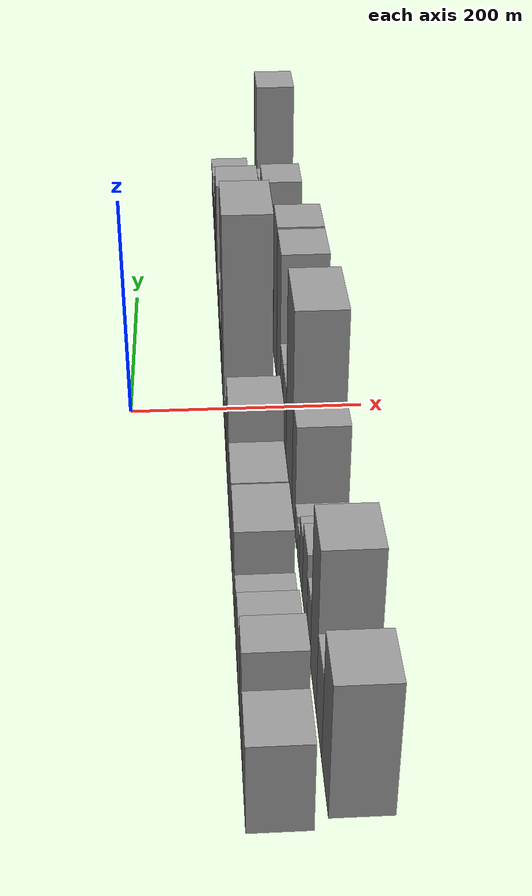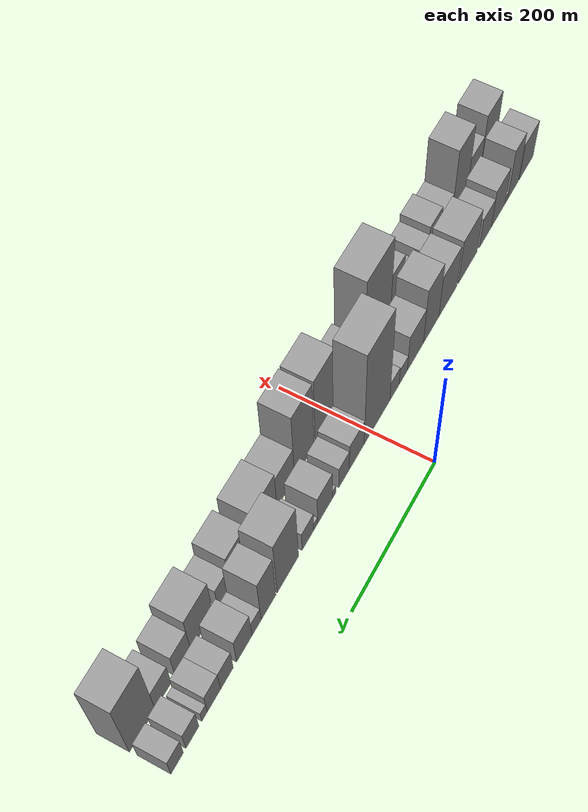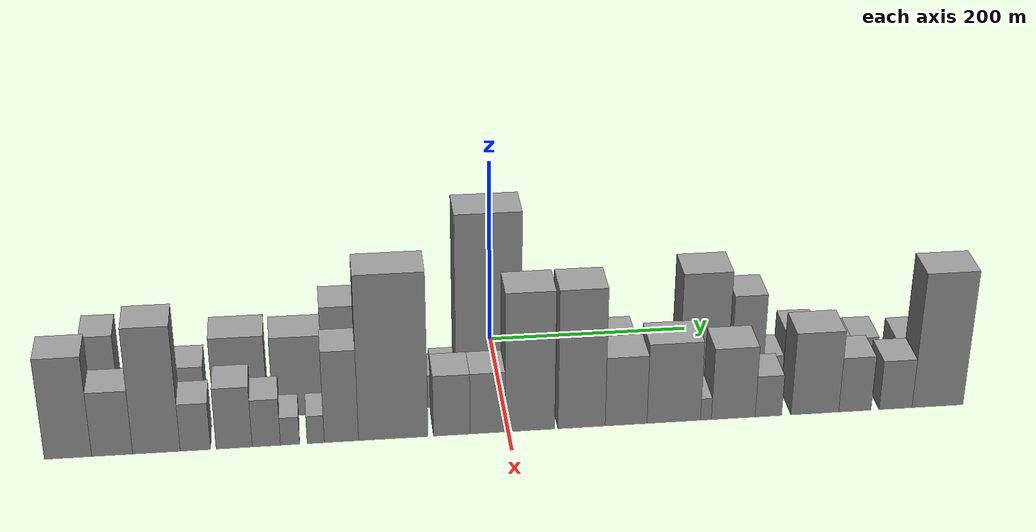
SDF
<sdf version="1.6">
 <world name="default">
  <scene>
   <sky><clouds><speed>12</speed></clouds></sky>
   <ambient>0.4 0.4 0.4 1</ambient>
   <background>0.7 0.7 0.7 1</background>
   <shadows>1</shadows>
  </scene>
  <gravity>0 0 -9.8066</gravity>
  <magnetic_field>6e-06 2.3e-05 -4.2e-05</magnetic_field>
  <physics default="0" name="default_physics" type="ode">
   <ode>
    <solver>
     <type>quick</type>
     <iters>10</iters>
     <sor>1.0</sor>
     <use_dynamic_moi_rescaling>0</use_dynamic_moi_rescaling>
    </solver>
    <constraints>
     <cfm>0</cfm>
     <erp>0.2</erp>
     <contact_max_correcting_vel>100</contact_max_correcting_vel>
     <contact_surface_layer>0.001</contact_surface_layer>
    </constraints>
   </ode>
   <max_step_size>0.004</max_step_size>
   <real_time_factor>1</real_time_factor>
   <real_time_update_rate>250</real_time_update_rate>
  </physics>
  <light name="sun" type="directional">
   <pose>0 0 10 0 0 0</pose>
   <diffuse>0.8 0.8 0.8 1</diffuse>
   <specular>0.2 0.2 0.2 1</specular>
   <attenuation>
    <range>1000</range>
    <constant>0.9</constant>
    <linear>0.01</linear>
    <quadratic>0.001</quadratic>
   </attenuation>
   <direction>-0.5 0.1 -0.9</direction>
  </light>
  <model name="building_1">
   <static>1</static>
   <pose>100.0000 -417.2567 0 0.000000 0.000000 0.000000</pose>
   <link name="link">
    <pose>0 0 36.00 0 0 0</pose>
    <collision name="collision"><geometry><box><size>40.0000 41.4867 72.0000</size></box></geometry></collision>
    <visual name="visual">
     <cast_shadows>0</cast_shadows>
     <geometry><box><size>40.0000 41.4867 72.0000</size></box></geometry>
     <material>
      <script>
       <uri>model://grey_wall/materials/scripts</uri>
       <uri>model://grey_wall/materials/textures</uri>
       <name>vrc/grey_wall</name>
      </script>
     </material>
    </visual>
   </link>
  </model>
  <model name="building_2">
   <static>1</static>
   <pose>100.0000 -378.1673 0 0.000000 0.000000 0.000000</pose>
   <link name="link">
    <pose>0 0 49.50 0 0 0</pose>
    <collision name="collision"><geometry><box><size>40.0000 30.6922 99.0000</size></box></geometry></collision>
    <visual name="visual">
     <cast_shadows>0</cast_shadows>
     <geometry><box><size>40.0000 30.6922 99.0000</size></box></geometry>
     <material>
      <script>
       <uri>model://grey_wall/materials/scripts</uri>
       <uri>model://grey_wall/materials/textures</uri>
       <name>vrc/grey_wall</name>
      </script>
     </material>
    </visual>
   </link>
  </model>
  <model name="building_3">
   <static>1</static>
   <pose>100.0000 -358.6175 0 0.000000 0.000000 0.000000</pose>
   <link name="link">
    <pose>0 0 9.00 0 0 0</pose>
    <collision name="collision"><geometry><box><size>40.0000 8.4073 18.0000</size></box></geometry></collision>
    <visual name="visual">
     <cast_shadows>0</cast_shadows>
     <geometry><box><size>40.0000 8.4073 18.0000</size></box></geometry>
     <material>
      <script>
       <uri>model://grey_wall/materials/scripts</uri>
       <uri>model://grey_wall/materials/textures</uri>
       <name>vrc/grey_wall</name>
      </script>
     </material>
    </visual>
   </link>
  </model>
  <model name="building_4">
   <static>1</static>
   <pose>100.0000 -335.2456 0 0.000000 0.000000 0.000000</pose>
   <link name="link">
    <pose>0 0 37.50 0 0 0</pose>
    <collision name="collision"><geometry><box><size>40.0000 38.3366 75.0000</size></box></geometry></collision>
    <visual name="visual">
     <cast_shadows>0</cast_shadows>
     <geometry><box><size>40.0000 38.3366 75.0000</size></box></geometry>
     <material>
      <script>
       <uri>model://grey_wall/materials/scripts</uri>
       <uri>model://grey_wall/materials/textures</uri>
       <name>vrc/grey_wall</name>
      </script>
     </material>
    </visual>
   </link>
  </model>
  <model name="building_5">
   <static>1</static>
   <pose>100.0000 -299.4173 0 0.000000 0.000000 0.000000</pose>
   <link name="link">
    <pose>0 0 30.00 0 0 0</pose>
    <collision name="collision"><geometry><box><size>40.0000 33.3198 60.0000</size></box></geometry></collision>
    <visual name="visual">
     <cast_shadows>0</cast_shadows>
     <geometry><box><size>40.0000 33.3198 60.0000</size></box></geometry>
     <material>
      <script>
       <uri>model://grey_wall/materials/scripts</uri>
       <uri>model://grey_wall/materials/textures</uri>
       <name>vrc/grey_wall</name>
      </script>
     </material>
    </visual>
   </link>
  </model>
  <model name="building_6">
   <static>1</static>
   <pose>100.0000 -250.2719 0 0.000000 0.000000 0.000000</pose>
   <link name="link">
    <pose>0 0 45.00 0 0 0</pose>
    <collision name="collision"><geometry><box><size>40.0000 50.9710 90.0000</size></box></geometry></collision>
    <visual name="visual">
     <cast_shadows>0</cast_shadows>
     <geometry><box><size>40.0000 50.9710 90.0000</size></box></geometry>
     <material>
      <script>
       <uri>model://grey_wall/materials/scripts</uri>
       <uri>model://grey_wall/materials/textures</uri>
       <name>vrc/grey_wall</name>
      </script>
     </material>
    </visual>
   </link>
  </model>
  <model name="building_7">
   <static>1</static>
   <pose>100.0000 -195.7346 0 0.000000 0.000000 0.000000</pose>
   <link name="link">
    <pose>0 0 43.50 0 0 0</pose>
    <collision name="collision"><geometry><box><size>40.0000 48.1036 87.0000</size></box></geometry></collision>
    <visual name="visual">
     <cast_shadows>0</cast_shadows>
     <geometry><box><size>40.0000 48.1036 87.0000</size></box></geometry>
     <material>
      <script>
       <uri>model://grey_wall/materials/scripts</uri>
       <uri>model://grey_wall/materials/textures</uri>
       <name>vrc/grey_wall</name>
      </script>
     </material>
    </visual>
   </link>
  </model>
  <model name="building_8">
   <static>1</static>
   <pose>100.0000 -151.3769 0 0.000000 0.000000 0.000000</pose>
   <link name="link">
    <pose>0 0 58.50 0 0 0</pose>
    <collision name="collision"><geometry><box><size>40.0000 40.6118 117.0000</size></box></geometry></collision>
    <visual name="visual">
     <cast_shadows>0</cast_shadows>
     <geometry><box><size>40.0000 40.6118 117.0000</size></box></geometry>
     <material>
      <script>
       <uri>model://grey_wall/materials/scripts</uri>
       <uri>model://grey_wall/materials/textures</uri>
       <name>vrc/grey_wall</name>
      </script>
     </material>
    </visual>
   </link>
  </model>
  <model name="building_9">
   <static>1</static>
   <pose>100.0000 -110.2192 0 0.000000 0.000000 0.000000</pose>
   <link name="link">
    <pose>0 0 39.00 0 0 0</pose>
    <collision name="collision"><geometry><box><size>40.0000 41.7035 78.0000</size></box></geometry></collision>
    <visual name="visual">
     <cast_shadows>0</cast_shadows>
     <geometry><box><size>40.0000 41.7035 78.0000</size></box></geometry>
     <material>
      <script>
       <uri>model://grey_wall/materials/scripts</uri>
       <uri>model://grey_wall/materials/textures</uri>
       <name>vrc/grey_wall</name>
      </script>
     </material>
    </visual>
   </link>
  </model>
  <model name="building_10">
   <static>1</static>
   <pose>100.0000 -78.9735 0 0.000000 0.000000 0.000000</pose>
   <link name="link">
    <pose>0 0 18.00 0 0 0</pose>
    <collision name="collision"><geometry><box><size>40.0000 20.7880 36.0000</size></box></geometry></collision>
    <visual name="visual">
     <cast_shadows>0</cast_shadows>
     <geometry><box><size>40.0000 20.7880 36.0000</size></box></geometry>
     <material>
      <script>
       <uri>model://grey_wall/materials/scripts</uri>
       <uri>model://grey_wall/materials/textures</uri>
       <name>vrc/grey_wall</name>
      </script>
     </material>
    </visual>
   </link>
  </model>
  <model name="building_11">
   <static>1</static>
   <pose>100.0000 -56.8139 0 0.000000 0.000000 0.000000</pose>
   <link name="link">
    <pose>0 0 21.00 0 0 0</pose>
    <collision name="collision"><geometry><box><size>40.0000 23.5311 42.0000</size></box></geometry></collision>
    <visual name="visual">
     <cast_shadows>0</cast_shadows>
     <geometry><box><size>40.0000 23.5311 42.0000</size></box></geometry>
     <material>
      <script>
       <uri>model://grey_wall/materials/scripts</uri>
       <uri>model://grey_wall/materials/textures</uri>
       <name>vrc/grey_wall</name>
      </script>
     </material>
    </visual>
   </link>
  </model>
  <model name="building_12">
   <static>1</static>
   <pose>100.0000 -13.4844 0 0.000000 0.000000 0.000000</pose>
   <link name="link">
    <pose>0 0 103.50 0 0 0</pose>
    <collision name="collision"><geometry><box><size>40.0000 63.1280 207.0000</size></box></geometry></collision>
    <visual name="visual">
     <cast_shadows>0</cast_shadows>
     <geometry><box><size>40.0000 63.1280 207.0000</size></box></geometry>
     <material>
      <script>
       <uri>model://grey_wall/materials/scripts</uri>
       <uri>model://grey_wall/materials/textures</uri>
       <name>vrc/grey_wall</name>
      </script>
     </material>
    </visual>
   </link>
  </model>
  <model name="building_13">
   <static>1</static>
   <pose>100.0000 35.9638 0 0.000000 0.000000 0.000000</pose>
   <link name="link">
    <pose>0 0 30.00 0 0 0</pose>
    <collision name="collision"><geometry><box><size>40.0000 35.7683 60.0000</size></box></geometry></collision>
    <visual name="visual">
     <cast_shadows>0</cast_shadows>
     <geometry><box><size>40.0000 35.7683 60.0000</size></box></geometry>
     <material>
      <script>
       <uri>model://grey_wall/materials/scripts</uri>
       <uri>model://grey_wall/materials/textures</uri>
       <name>vrc/grey_wall</name>
      </script>
     </material>
    </visual>
   </link>
  </model>
  <model name="building_14">
   <static>1</static>
   <pose>100.0000 66.1220 0 0.000000 0.000000 0.000000</pose>
   <link name="link">
    <pose>0 0 24.00 0 0 0</pose>
    <collision name="collision"><geometry><box><size>40.0000 24.5481 48.0000</size></box></geometry></collision>
    <visual name="visual">
     <cast_shadows>0</cast_shadows>
     <geometry><box><size>40.0000 24.5481 48.0000</size></box></geometry>
     <material>
      <script>
       <uri>model://grey_wall/materials/scripts</uri>
       <uri>model://grey_wall/materials/textures</uri>
       <name>vrc/grey_wall</name>
      </script>
     </material>
    </visual>
   </link>
  </model>
  <model name="building_15">
   <static>1</static>
   <pose>100.0000 89.5140 0 0.000000 0.000000 0.000000</pose>
   <link name="link">
    <pose>0 0 9.00 0 0 0</pose>
    <collision name="collision"><geometry><box><size>40.0000 8.2359 18.0000</size></box></geometry></collision>
    <visual name="visual">
     <cast_shadows>0</cast_shadows>
     <geometry><box><size>40.0000 8.2359 18.0000</size></box></geometry>
     <material>
      <script>
       <uri>model://grey_wall/materials/scripts</uri>
       <uri>model://grey_wall/materials/textures</uri>
       <name>vrc/grey_wall</name>
      </script>
     </material>
    </visual>
   </link>
  </model>
  <model name="building_16">
   <static>1</static>
   <pose>100.0000 110.7530 0 0.000000 0.000000 0.000000</pose>
   <link name="link">
    <pose>0 0 33.00 0 0 0</pose>
    <collision name="collision"><geometry><box><size>40.0000 34.2422 66.0000</size></box></geometry></collision>
    <visual name="visual">
     <cast_shadows>0</cast_shadows>
     <geometry><box><size>40.0000 34.2422 66.0000</size></box></geometry>
     <material>
      <script>
       <uri>model://grey_wall/materials/scripts</uri>
       <uri>model://grey_wall/materials/textures</uri>
       <name>vrc/grey_wall</name>
      </script>
     </material>
    </visual>
   </link>
  </model>
  <model name="building_17">
   <static>1</static>
   <pose>100.0000 132.3384 0 0.000000 0.000000 0.000000</pose>
   <link name="link">
    <pose>0 0 9.00 0 0 0</pose>
    <collision name="collision"><geometry><box><size>40.0000 8.9285 18.0000</size></box></geometry></collision>
    <visual name="visual">
     <cast_shadows>0</cast_shadows>
     <geometry><box><size>40.0000 8.9285 18.0000</size></box></geometry>
     <material>
      <script>
       <uri>model://grey_wall/materials/scripts</uri>
       <uri>model://grey_wall/materials/textures</uri>
       <name>vrc/grey_wall</name>
      </script>
     </material>
    </visual>
   </link>
  </model>
  <model name="building_18">
   <static>1</static>
   <pose>100.0000 150.1036 0 0.000000 0.000000 0.000000</pose>
   <link name="link">
    <pose>0 0 22.50 0 0 0</pose>
    <collision name="collision"><geometry><box><size>40.0000 26.6019 45.0000</size></box></geometry></collision>
    <visual name="visual">
     <cast_shadows>0</cast_shadows>
     <geometry><box><size>40.0000 26.6019 45.0000</size></box></geometry>
     <material>
      <script>
       <uri>model://grey_wall/materials/scripts</uri>
       <uri>model://grey_wall/materials/textures</uri>
       <name>vrc/grey_wall</name>
      </script>
     </material>
    </visual>
   </link>
  </model>
  <model name="building_19">
   <static>1</static>
   <pose>100.0000 195.0816 0 0.000000 0.000000 0.000000</pose>
   <link name="link">
    <pose>0 0 66.00 0 0 0</pose>
    <collision name="collision"><geometry><box><size>40.0000 47.3541 132.0000</size></box></geometry></collision>
    <visual name="visual">
     <cast_shadows>0</cast_shadows>
     <geometry><box><size>40.0000 47.3541 132.0000</size></box></geometry>
     <material>
      <script>
       <uri>model://grey_wall/materials/scripts</uri>
       <uri>model://grey_wall/materials/textures</uri>
       <name>vrc/grey_wall</name>
      </script>
     </material>
    </visual>
   </link>
  </model>
  <model name="building_20">
   <static>1</static>
   <pose>100.0000 237.6945 0 0.000000 0.000000 0.000000</pose>
   <link name="link">
    <pose>0 0 52.50 0 0 0</pose>
    <collision name="collision"><geometry><box><size>40.0000 31.8718 105.0000</size></box></geometry></collision>
    <visual name="visual">
     <cast_shadows>0</cast_shadows>
     <geometry><box><size>40.0000 31.8718 105.0000</size></box></geometry>
     <material>
      <script>
       <uri>model://grey_wall/materials/scripts</uri>
       <uri>model://grey_wall/materials/textures</uri>
       <name>vrc/grey_wall</name>
      </script>
     </material>
    </visual>
   </link>
  </model>
  <model name="building_21">
   <static>1</static>
   <pose>100.0000 263.5030 0 0.000000 0.000000 0.000000</pose>
   <link name="link">
    <pose>0 0 18.00 0 0 0</pose>
    <collision name="collision"><geometry><box><size>40.0000 19.7451 36.0000</size></box></geometry></collision>
    <visual name="visual">
     <cast_shadows>0</cast_shadows>
     <geometry><box><size>40.0000 19.7451 36.0000</size></box></geometry>
     <material>
      <script>
       <uri>model://grey_wall/materials/scripts</uri>
       <uri>model://grey_wall/materials/textures</uri>
       <name>vrc/grey_wall</name>
      </script>
     </material>
    </visual>
   </link>
  </model>
  <model name="building_22">
   <static>1</static>
   <pose>100.0000 289.6496 0 0.000000 0.000000 0.000000</pose>
   <link name="link">
    <pose>0 0 31.50 0 0 0</pose>
    <collision name="collision"><geometry><box><size>40.0000 32.5481 63.0000</size></box></geometry></collision>
    <visual name="visual">
     <cast_shadows>0</cast_shadows>
     <geometry><box><size>40.0000 32.5481 63.0000</size></box></geometry>
     <material>
      <script>
       <uri>model://grey_wall/materials/scripts</uri>
       <uri>model://grey_wall/materials/textures</uri>
       <name>vrc/grey_wall</name>
      </script>
     </material>
    </visual>
   </link>
  </model>
  <model name="building_23">
   <static>1</static>
   <pose>100.0000 326.0409 0 0.000000 0.000000 0.000000</pose>
   <link name="link">
    <pose>0 0 25.50 0 0 0</pose>
    <collision name="collision"><geometry><box><size>40.0000 26.2345 51.0000</size></box></geometry></collision>
    <visual name="visual">
     <cast_shadows>0</cast_shadows>
     <geometry><box><size>40.0000 26.2345 51.0000</size></box></geometry>
     <material>
      <script>
       <uri>model://grey_wall/materials/scripts</uri>
       <uri>model://grey_wall/materials/textures</uri>
       <name>vrc/grey_wall</name>
      </script>
     </material>
    </visual>
   </link>
  </model>
  <model name="building_24">
   <static>1</static>
   <pose>100.0000 352.7121 0 0.000000 0.000000 0.000000</pose>
   <link name="link">
    <pose>0 0 25.50 0 0 0</pose>
    <collision name="collision"><geometry><box><size>40.0000 27.1079 51.0000</size></box></geometry></collision>
    <visual name="visual">
     <cast_shadows>0</cast_shadows>
     <geometry><box><size>40.0000 27.1079 51.0000</size></box></geometry>
     <material>
      <script>
       <uri>model://grey_wall/materials/scripts</uri>
       <uri>model://grey_wall/materials/textures</uri>
       <name>vrc/grey_wall</name>
      </script>
     </material>
    </visual>
   </link>
  </model>
  <model name="building_25">
   <static>1</static>
   <pose>100.0000 371.8195 0 0.000000 0.000000 0.000000</pose>
   <link name="link">
    <pose>0 0 13.50 0 0 0</pose>
    <collision name="collision"><geometry><box><size>40.0000 11.1069 27.0000</size></box></geometry></collision>
    <visual name="visual">
     <cast_shadows>0</cast_shadows>
     <geometry><box><size>40.0000 11.1069 27.0000</size></box></geometry>
     <material>
      <script>
       <uri>model://grey_wall/materials/scripts</uri>
       <uri>model://grey_wall/materials/textures</uri>
       <name>vrc/grey_wall</name>
      </script>
     </material>
    </visual>
   </link>
  </model>
  <model name="building_26">
   <static>1</static>
   <pose>100.0000 396.3256 0 0.000000 0.000000 0.000000</pose>
   <link name="link">
    <pose>0 0 24.00 0 0 0</pose>
    <collision name="collision"><geometry><box><size>40.0000 25.9053 48.0000</size></box></geometry></collision>
    <visual name="visual">
     <cast_shadows>0</cast_shadows>
     <geometry><box><size>40.0000 25.9053 48.0000</size></box></geometry>
     <material>
      <script>
       <uri>model://grey_wall/materials/scripts</uri>
       <uri>model://grey_wall/materials/textures</uri>
       <name>vrc/grey_wall</name>
      </script>
     </material>
    </visual>
   </link>
  </model>
  <model name="building_27">
   <static>1</static>
   <pose>100.0000 426.5920 0 0.000000 0.000000 0.000000</pose>
   <link name="link">
    <pose>0 0 22.50 0 0 0</pose>
    <collision name="collision"><geometry><box><size>40.0000 24.6274 45.0000</size></box></geometry></collision>
    <visual name="visual">
     <cast_shadows>0</cast_shadows>
     <geometry><box><size>40.0000 24.6274 45.0000</size></box></geometry>
     <material>
      <script>
       <uri>model://grey_wall/materials/scripts</uri>
       <uri>model://grey_wall/materials/textures</uri>
       <name>vrc/grey_wall</name>
      </script>
     </material>
    </visual>
   </link>
  </model>
  <model name="building_28">
   <static>1</static>
   <pose>149.0000 -408.5262 0 0.000000 0.000000 0.000000</pose>
   <link name="link">
    <pose>0 0 54.00 0 0 0</pose>
    <collision name="collision"><geometry><box><size>40.0000 42.9476 108.0000</size></box></geometry></collision>
    <visual name="visual">
     <cast_shadows>0</cast_shadows>
     <geometry><box><size>40.0000 42.9476 108.0000</size></box></geometry>
     <material>
      <script>
       <uri>model://grey_wall/materials/scripts</uri>
       <uri>model://grey_wall/materials/textures</uri>
       <name>vrc/grey_wall</name>
      </script>
     </material>
    </visual>
   </link>
  </model>
  <model name="building_29">
   <static>1</static>
   <pose>149.0000 -368.2829 0 0.000000 0.000000 0.000000</pose>
   <link name="link">
    <pose>0 0 34.50 0 0 0</pose>
    <collision name="collision"><geometry><box><size>40.0000 37.5390 69.0000</size></box></geometry></collision>
    <visual name="visual">
     <cast_shadows>0</cast_shadows>
     <geometry><box><size>40.0000 37.5390 69.0000</size></box></geometry>
     <material>
      <script>
       <uri>model://grey_wall/materials/scripts</uri>
       <uri>model://grey_wall/materials/textures</uri>
       <name>vrc/grey_wall</name>
      </script>
     </material>
    </visual>
   </link>
  </model>
  <model name="building_30">
   <static>1</static>
   <pose>149.0000 -327.7249 0 0.000000 0.000000 0.000000</pose>
   <link name="link">
    <pose>0 0 67.50 0 0 0</pose>
    <collision name="collision"><geometry><box><size>40.0000 43.5769 135.0000</size></box></geometry></collision>
    <visual name="visual">
     <cast_shadows>0</cast_shadows>
     <geometry><box><size>40.0000 43.5769 135.0000</size></box></geometry>
     <material>
      <script>
       <uri>model://grey_wall/materials/scripts</uri>
       <uri>model://grey_wall/materials/textures</uri>
       <name>vrc/grey_wall</name>
      </script>
     </material>
    </visual>
   </link>
  </model>
  <model name="building_31">
   <static>1</static>
   <pose>149.0000 -291.9548 0 0.000000 0.000000 0.000000</pose>
   <link name="link">
    <pose>0 0 25.50 0 0 0</pose>
    <collision name="collision"><geometry><box><size>40.0000 27.9634 51.0000</size></box></geometry></collision>
    <visual name="visual">
     <cast_shadows>0</cast_shadows>
     <geometry><box><size>40.0000 27.9634 51.0000</size></box></geometry>
     <material>
      <script>
       <uri>model://grey_wall/materials/scripts</uri>
       <uri>model://grey_wall/materials/textures</uri>
       <name>vrc/grey_wall</name>
      </script>
     </material>
    </visual>
   </link>
  </model>
  <model name="building_32">
   <static>1</static>
   <pose>149.0000 -256.3212 0 0.000000 0.000000 0.000000</pose>
   <link name="link">
    <pose>0 0 33.00 0 0 0</pose>
    <collision name="collision"><geometry><box><size>40.0000 33.3038 66.0000</size></box></geometry></collision>
    <visual name="visual">
     <cast_shadows>0</cast_shadows>
     <geometry><box><size>40.0000 33.3038 66.0000</size></box></geometry>
     <material>
      <script>
       <uri>model://grey_wall/materials/scripts</uri>
       <uri>model://grey_wall/materials/textures</uri>
       <name>vrc/grey_wall</name>
      </script>
     </material>
    </visual>
   </link>
  </model>
  <model name="building_33">
   <static>1</static>
   <pose>149.0000 -226.5841 0 0.000000 0.000000 0.000000</pose>
   <link name="link">
    <pose>0 0 25.50 0 0 0</pose>
    <collision name="collision"><geometry><box><size>40.0000 26.1703 51.0000</size></box></geometry></collision>
    <visual name="visual">
     <cast_shadows>0</cast_shadows>
     <geometry><box><size>40.0000 26.1703 51.0000</size></box></geometry>
     <material>
      <script>
       <uri>model://grey_wall/materials/scripts</uri>
       <uri>model://grey_wall/materials/textures</uri>
       <name>vrc/grey_wall</name>
      </script>
     </material>
    </visual>
   </link>
  </model>
  <model name="building_34">
   <static>1</static>
   <pose>149.0000 -204.5828 0 0.000000 0.000000 0.000000</pose>
   <link name="link">
    <pose>0 0 15.00 0 0 0</pose>
    <collision name="collision"><geometry><box><size>40.0000 17.8323 30.0000</size></box></geometry></collision>
    <visual name="visual">
     <cast_shadows>0</cast_shadows>
     <geometry><box><size>40.0000 17.8323 30.0000</size></box></geometry>
     <material>
      <script>
       <uri>model://grey_wall/materials/scripts</uri>
       <uri>model://grey_wall/materials/textures</uri>
       <name>vrc/grey_wall</name>
      </script>
     </material>
    </visual>
   </link>
  </model>
  <model name="building_35">
   <static>1</static>
   <pose>149.0000 -180.7078 0 0.000000 0.000000 0.000000</pose>
   <link name="link">
    <pose>0 0 15.00 0 0 0</pose>
    <collision name="collision"><geometry><box><size>40.0000 15.9178 30.0000</size></box></geometry></collision>
    <visual name="visual">
     <cast_shadows>0</cast_shadows>
     <geometry><box><size>40.0000 15.9178 30.0000</size></box></geometry>
     <material>
      <script>
       <uri>model://grey_wall/materials/scripts</uri>
       <uri>model://grey_wall/materials/textures</uri>
       <name>vrc/grey_wall</name>
      </script>
     </material>
    </visual>
   </link>
  </model>
  <model name="building_36">
   <static>1</static>
   <pose>149.0000 -156.7536 0 0.000000 0.000000 0.000000</pose>
   <link name="link">
    <pose>0 0 49.50 0 0 0</pose>
    <collision name="collision"><geometry><box><size>40.0000 31.9906 99.0000</size></box></geometry></collision>
    <visual name="visual">
     <cast_shadows>0</cast_shadows>
     <geometry><box><size>40.0000 31.9906 99.0000</size></box></geometry>
     <material>
      <script>
       <uri>model://grey_wall/materials/scripts</uri>
       <uri>model://grey_wall/materials/textures</uri>
       <name>vrc/grey_wall</name>
      </script>
     </material>
    </visual>
   </link>
  </model>
  <model name="building_37">
   <static>1</static>
   <pose>149.0000 -108.1643 0 0.000000 0.000000 0.000000</pose>
   <link name="link">
    <pose>0 0 88.50 0 0 0</pose>
    <collision name="collision"><geometry><box><size>40.0000 65.1881 177.0000</size></box></geometry></collision>
    <visual name="visual">
     <cast_shadows>0</cast_shadows>
     <geometry><box><size>40.0000 65.1881 177.0000</size></box></geometry>
     <material>
      <script>
       <uri>model://grey_wall/materials/scripts</uri>
       <uri>model://grey_wall/materials/textures</uri>
       <name>vrc/grey_wall</name>
      </script>
     </material>
    </visual>
   </link>
  </model>
  <model name="building_38">
   <static>1</static>
   <pose>149.0000 -53.2823 0 0.000000 0.000000 0.000000</pose>
   <link name="link">
    <pose>0 0 33.00 0 0 0</pose>
    <collision name="collision"><geometry><box><size>40.0000 34.5761 66.0000</size></box></geometry></collision>
    <visual name="visual">
     <cast_shadows>0</cast_shadows>
     <geometry><box><size>40.0000 34.5761 66.0000</size></box></geometry>
     <material>
      <script>
       <uri>model://grey_wall/materials/scripts</uri>
       <uri>model://grey_wall/materials/textures</uri>
       <name>vrc/grey_wall</name>
      </script>
     </material>
    </visual>
   </link>
  </model>
  <model name="building_39">
   <static>1</static>
   <pose>149.0000 -19.4024 0 0.000000 0.000000 0.000000</pose>
   <link name="link">
    <pose>0 0 33.00 0 0 0</pose>
    <collision name="collision"><geometry><box><size>40.0000 33.1837 66.0000</size></box></geometry></collision>
    <visual name="visual">
     <cast_shadows>0</cast_shadows>
     <geometry><box><size>40.0000 33.1837 66.0000</size></box></geometry>
     <material>
      <script>
       <uri>model://grey_wall/materials/scripts</uri>
       <uri>model://grey_wall/materials/textures</uri>
       <name>vrc/grey_wall</name>
      </script>
     </material>
    </visual>
   </link>
  </model>
  <model name="building_40">
   <static>1</static>
   <pose>149.0000 20.6225 0 0.000000 0.000000 0.000000</pose>
   <link name="link">
    <pose>0 0 75.00 0 0 0</pose>
    <collision name="collision"><geometry><box><size>40.0000 46.8661 150.0000</size></box></geometry></collision>
    <visual name="visual">
     <cast_shadows>0</cast_shadows>
     <geometry><box><size>40.0000 46.8661 150.0000</size></box></geometry>
     <material>
      <script>
       <uri>model://grey_wall/materials/scripts</uri>
       <uri>model://grey_wall/materials/textures</uri>
       <name>vrc/grey_wall</name>
      </script>
     </material>
    </visual>
   </link>
  </model>
  <model name="building_41">
   <static>1</static>
   <pose>149.0000 69.5752 0 0.000000 0.000000 0.000000</pose>
   <link name="link">
    <pose>0 0 75.00 0 0 0</pose>
    <collision name="collision"><geometry><box><size>40.0000 45.0393 150.0000</size></box></geometry></collision>
    <visual name="visual">
     <cast_shadows>0</cast_shadows>
     <geometry><box><size>40.0000 45.0393 150.0000</size></box></geometry>
     <material>
      <script>
       <uri>model://grey_wall/materials/scripts</uri>
       <uri>model://grey_wall/materials/textures</uri>
       <name>vrc/grey_wall</name>
      </script>
     </material>
    </visual>
   </link>
  </model>
  <model name="building_42">
   <static>1</static>
   <pose>149.0000 112.1137 0 0.000000 0.000000 0.000000</pose>
   <link name="link">
    <pose>0 0 37.50 0 0 0</pose>
    <collision name="collision"><geometry><box><size>40.0000 40.0377 75.0000</size></box></geometry></collision>
    <visual name="visual">
     <cast_shadows>0</cast_shadows>
     <geometry><box><size>40.0000 40.0377 75.0000</size></box></geometry>
     <material>
      <script>
       <uri>model://grey_wall/materials/scripts</uri>
       <uri>model://grey_wall/materials/textures</uri>
       <name>vrc/grey_wall</name>
      </script>
     </material>
    </visual>
   </link>
  </model>
  <model name="building_43">
   <static>1</static>
   <pose>149.0000 157.8726 0 0.000000 0.000000 0.000000</pose>
   <link name="link">
    <pose>0 0 43.50 0 0 0</pose>
    <collision name="collision"><geometry><box><size>40.0000 51.4801 87.0000</size></box></geometry></collision>
    <visual name="visual">
     <cast_shadows>0</cast_shadows>
     <geometry><box><size>40.0000 51.4801 87.0000</size></box></geometry>
     <material>
      <script>
       <uri>model://grey_wall/materials/scripts</uri>
       <uri>model://grey_wall/materials/textures</uri>
       <name>vrc/grey_wall</name>
      </script>
     </material>
    </visual>
   </link>
  </model>
  <model name="building_44">
   <static>1</static>
   <pose>149.0000 188.8400 0 0.000000 0.000000 0.000000</pose>
   <link name="link">
    <pose>0 0 12.00 0 0 0</pose>
    <collision name="collision"><geometry><box><size>40.0000 10.4546 24.0000</size></box></geometry></collision>
    <visual name="visual">
     <cast_shadows>0</cast_shadows>
     <geometry><box><size>40.0000 10.4546 24.0000</size></box></geometry>
     <material>
      <script>
       <uri>model://grey_wall/materials/scripts</uri>
       <uri>model://grey_wall/materials/textures</uri>
       <name>vrc/grey_wall</name>
      </script>
     </material>
    </visual>
   </link>
  </model>
  <model name="building_45">
   <static>1</static>
   <pose>149.0000 215.2452 0 0.000000 0.000000 0.000000</pose>
   <link name="link">
    <pose>0 0 39.00 0 0 0</pose>
    <collision name="collision"><geometry><box><size>40.0000 42.3559 78.0000</size></box></geometry></collision>
    <visual name="visual">
     <cast_shadows>0</cast_shadows>
     <geometry><box><size>40.0000 42.3559 78.0000</size></box></geometry>
     <material>
      <script>
       <uri>model://grey_wall/materials/scripts</uri>
       <uri>model://grey_wall/materials/textures</uri>
       <name>vrc/grey_wall</name>
      </script>
     </material>
    </visual>
   </link>
  </model>
  <model name="building_46">
   <static>1</static>
   <pose>149.0000 249.3056 0 0.000000 0.000000 0.000000</pose>
   <link name="link">
    <pose>0 0 22.50 0 0 0</pose>
    <collision name="collision"><geometry><box><size>40.0000 25.7648 45.0000</size></box></geometry></collision>
    <visual name="visual">
     <cast_shadows>0</cast_shadows>
     <geometry><box><size>40.0000 25.7648 45.0000</size></box></geometry>
     <material>
      <script>
       <uri>model://grey_wall/materials/scripts</uri>
       <uri>model://grey_wall/materials/textures</uri>
       <name>vrc/grey_wall</name>
      </script>
     </material>
    </visual>
   </link>
  </model>
  <model name="building_47">
   <static>1</static>
   <pose>149.0000 294.4817 0 0.000000 0.000000 0.000000</pose>
   <link name="link">
    <pose>0 0 45.00 0 0 0</pose>
    <collision name="collision"><geometry><box><size>40.0000 46.5875 90.0000</size></box></geometry></collision>
    <visual name="visual">
     <cast_shadows>0</cast_shadows>
     <geometry><box><size>40.0000 46.5875 90.0000</size></box></geometry>
     <material>
      <script>
       <uri>model://grey_wall/materials/scripts</uri>
       <uri>model://grey_wall/materials/textures</uri>
       <name>vrc/grey_wall</name>
      </script>
     </material>
    </visual>
   </link>
  </model>
  <model name="building_48">
   <static>1</static>
   <pose>149.0000 333.5661 0 0.000000 0.000000 0.000000</pose>
   <link name="link">
    <pose>0 0 30.00 0 0 0</pose>
    <collision name="collision"><geometry><box><size>40.0000 31.5813 60.0000</size></box></geometry></collision>
    <visual name="visual">
     <cast_shadows>0</cast_shadows>
     <geometry><box><size>40.0000 31.5813 60.0000</size></box></geometry>
     <material>
      <script>
       <uri>model://grey_wall/materials/scripts</uri>
       <uri>model://grey_wall/materials/textures</uri>
       <name>vrc/grey_wall</name>
      </script>
     </material>
    </visual>
   </link>
  </model>
  <model name="building_49">
   <static>1</static>
   <pose>149.0000 373.4619 0 0.000000 0.000000 0.000000</pose>
   <link name="link">
    <pose>0 0 27.00 0 0 0</pose>
    <collision name="collision"><geometry><box><size>40.0000 32.2104 54.0000</size></box></geometry></collision>
    <visual name="visual">
     <cast_shadows>0</cast_shadows>
     <geometry><box><size>40.0000 32.2104 54.0000</size></box></geometry>
     <material>
      <script>
       <uri>model://grey_wall/materials/scripts</uri>
       <uri>model://grey_wall/materials/textures</uri>
       <name>vrc/grey_wall</name>
      </script>
     </material>
    </visual>
   </link>
  </model>
  <model name="building_50">
   <static>1</static>
   <pose>149.0000 414.6820 0 0.000000 0.000000 0.000000</pose>
   <link name="link">
    <pose>0 0 73.50 0 0 0</pose>
    <collision name="collision"><geometry><box><size>40.0000 50.2297 147.0000</size></box></geometry></collision>
    <visual name="visual">
     <cast_shadows>0</cast_shadows>
     <geometry><box><size>40.0000 50.2297 147.0000</size></box></geometry>
     <material>
      <script>
       <uri>model://grey_wall/materials/scripts</uri>
       <uri>model://grey_wall/materials/textures</uri>
       <name>vrc/grey_wall</name>
      </script>
     </material>
    </visual>
   </link>
  </model>
 </world>
</sdf>
